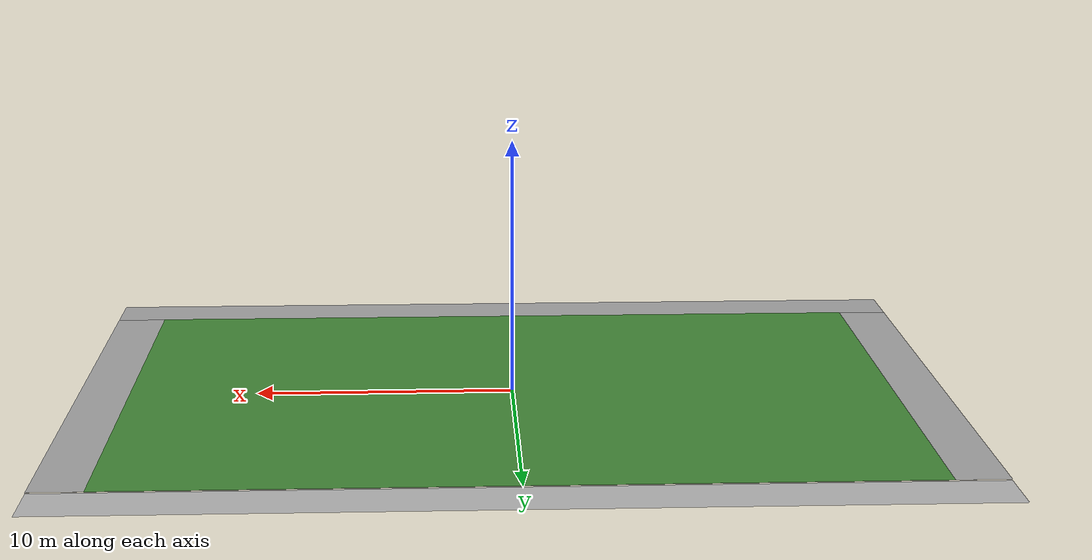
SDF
<sdf version="1.5">
 <world name="default">
  <model name="arm">
   <pose>0 0 -1.23236 0 -0 0</pose>
   <static>0</static>
   <static>1</static>
   <link name="arm_holder">
    <gravity>0</gravity>
    <pose>0 0.31 0.3 0 -0 0</pose>
    <inertial>
     <mass>5</mass>
     <inertia><ixx>1</ixx><ixy>0</ixy><ixz>0</ixz><iyy>1</iyy><iyz>0</iyz><izz>1</izz></inertia>
    </inertial>
    <collision name="collision"><geometry><box><size>0.1 0.1 0.6</size></box></geometry></collision>
    <visual name="visual"><geometry><box><size>0.1 0.1 0.6</size></box></geometry></visual>
   </link>
   <link name="hand">
    <pose>0.14 0.197 0.335 0 0 -1.5707</pose>
    <inertial>
     <mass>0.2</mass>
     <inertia><ixx>1</ixx><ixy>0</ixy><ixz>0</ixz><iyy>1</iyy><iyz>0</iyz><izz>1</izz></inertia>
    </inertial>
    <visual name="visual">
     <geometry><mesh><scale>1 1 1</scale><uri>model://arm/dae/p-handflaeche-teil-2-v01.dae</uri></mesh></geometry>
     <material><shader type="pixel"><normal_map>__default__</normal_map></shader></material>
    </visual>
    <collision name="collision">
     <geometry><mesh><uri>model://arm/dae/p-handflaeche-teil-2-v01.dae</uri></mesh></geometry>
    </collision>
   </link>
   <link name="upper_arm">
    <pose>-0 0.22 0.55 1.57 -0 1.5707</pose>
    <inertial>
     <mass>0.3</mass>
     <inertia><ixx>1</ixx><ixy>0</ixy><ixz>0</ixz><iyy>1</iyy><iyz>0</iyz><izz>1</izz></inertia>
    </inertial>
    <visual name="visual">
     <geometry><mesh><scale>1 1 1</scale><uri>model://arm/dae/p-oberarm-1-v02.dae</uri></mesh></geometry>
     <material><shader type="pixel"><normal_map>__default__</normal_map></shader></material>
    </visual>
    <collision name="collision">
     <geometry><mesh><uri>model://arm/dae/p-oberarm-1-v02.dae</uri></mesh></geometry>
    </collision>
   </link>
   <joint name="elbow" type="revolute">
    <pose>0 -0.15 0 0 -0 1.57</pose>
    <child>hand</child>
    <parent>upper_arm</parent>
    <axis>
     <limit><lower>-0.7</lower><upper>2</upper></limit>
     <xyz>0 1 0</xyz>
     <use_parent_model_frame>1</use_parent_model_frame>
     <dynamics><spring_reference>0</spring_reference><spring_stiffness>0</spring_stiffness></dynamics>
    </axis>
   </joint>
   <joint name="arm_holder_upper_arm" type="fixed">
    <pose>0 -0.02 0 0 -0 0</pose>
    <child>upper_arm</child>
    <parent>arm_holder</parent>
   </joint>
   <joint name="armholder_ground" type="revolute">
    <pose>0 0 -0.3 0 -0 0</pose>
    <parent>world</parent>
    <child>arm_holder</child>
   </joint>
   <plugin name="muscle_plugin" filename="libmuscle_plugin.so">
    <motor>
     <bemf_constant>0.001488</bemf_constant>
     <torque_constant>14.2</torque_constant>
     <inductance>0.118</inductance>
     <resistance>0.797</resistance>
     <inertiaMoment>4.09</inertiaMoment>
    </motor>
    <gear><ratio>53</ratio><efficiency>0.59</efficiency><inertiaMoment>0.4</inertiaMoment></gear>
    <spindle><radius>0.005</radius></spindle>
    <SEE><stiffness>1.0</stiffness><length0>0.1</length0></SEE>
   </plugin>
  </model>
  <physics name="default_physics" default="0" type="ode">
   <max_step_size>0.001</max_step_size>
   <real_time_factor>1</real_time_factor>
   <real_time_update_rate>1000</real_time_update_rate>
   <gravity>0 0 -9.8</gravity>
   <magnetic_field>6e-06 2.3e-05 -4.2e-05</magnetic_field>
  </physics>
  <scene><ambient>0.4 0.4 0.4 1</ambient><background>0.7 0.7 0.7 1</background><shadows>1</shadows></scene>
  <spherical_coordinates>
   <surface_model>EARTH_WGS84</surface_model>
   <latitude_deg>0</latitude_deg>
   <longitude_deg>0</longitude_deg>
   <elevation>0</elevation>
   <heading_deg>0</heading_deg>
  </spherical_coordinates>
  <light name="user_point_light_0" type="point">
   <pose>0 -0 1 0 -0 0</pose>
   <diffuse>0.5 0.5 0.5 1</diffuse>
   <specular>0.1 0.1 0.1 1</specular>
   <attenuation>
    <range>20</range>
    <constant>0.5</constant>
    <linear>0.01</linear>
    <quadratic>0.001</quadratic>
   </attenuation>
   <cast_shadows>0</cast_shadows>
   <direction>0 0 -1</direction>
  </light>
  <model name="RoboCup 3D Simulation Field">
   <static>1</static>
   <link name="field">
    <pose>0 0 0.01 0 -0 0</pose>
    <collision name="collision">
     <geometry><plane><normal>0 0 1</normal><size>30 20</size></plane></geometry>
     <surface><friction><ode><mu>100</mu><mu2>50</mu2></ode></friction></surface>
    </collision>
    <visual name="base1">
     <pose>0 11 0.001 0 -0 0</pose>
     <cast_shadows>0</cast_shadows>
     <geometry><plane><normal>0 0 1</normal><size>34 2</size></plane></geometry>
     <material>
      <script>
       <uri>model://robocup_3Dsim_field/materials/scripts/</uri>
       <uri>model://robocup_3Dsim_field/materials/textures/</uri>
       <name>RoboCup/FieldBorder</name>
      </script>
     </material>
    </visual>
    <visual name="base2">
     <pose>0 -11 0.001 0 -0 0</pose>
     <cast_shadows>0</cast_shadows>
     <geometry><plane><normal>0 0 1</normal><size>34 2</size></plane></geometry>
     <material>
      <script>
       <uri>model://robocup_3Dsim_field/materials/scripts/</uri>
       <uri>model://robocup_3Dsim_field/materials/textures/</uri>
       <name>RoboCup/FieldBorder</name>
      </script>
     </material>
    </visual>
    <visual name="base3">
     <pose>16 0 0.001 0 -0 0</pose>
     <cast_shadows>0</cast_shadows>
     <geometry><plane><normal>0 0 1</normal><size>2 20</size></plane></geometry>
     <material>
      <script>
       <uri>model://robocup_3Dsim_field/materials/scripts/</uri>
       <uri>model://robocup_3Dsim_field/materials/textures/</uri>
       <name>RoboCup/FieldBorder</name>
      </script>
     </material>
    </visual>
    <visual name="base4">
     <pose>-16 0 0.001 0 -0 0</pose>
     <cast_shadows>0</cast_shadows>
     <geometry><plane><normal>0 0 1</normal><size>2 20</size></plane></geometry>
     <material>
      <script>
       <uri>model://robocup_3Dsim_field/materials/scripts/</uri>
       <uri>model://robocup_3Dsim_field/materials/textures/</uri>
       <name>RoboCup/FieldBorder</name>
      </script>
     </material>
    </visual>
    <visual name="carpet">
     <cast_shadows>0</cast_shadows>
     <geometry><plane><normal>0 0 1</normal><size>30 20</size></plane></geometry>
     <material>
      <script>
       <uri>model://robocup_3Dsim_field/materials/scripts/</uri>
       <uri>model://robocup_3Dsim_field/materials/textures/</uri>
       <name>RoboCup/Grass</name>
      </script>
     </material>
    </visual>
   </link>
  </model>
 </world>
</sdf>
